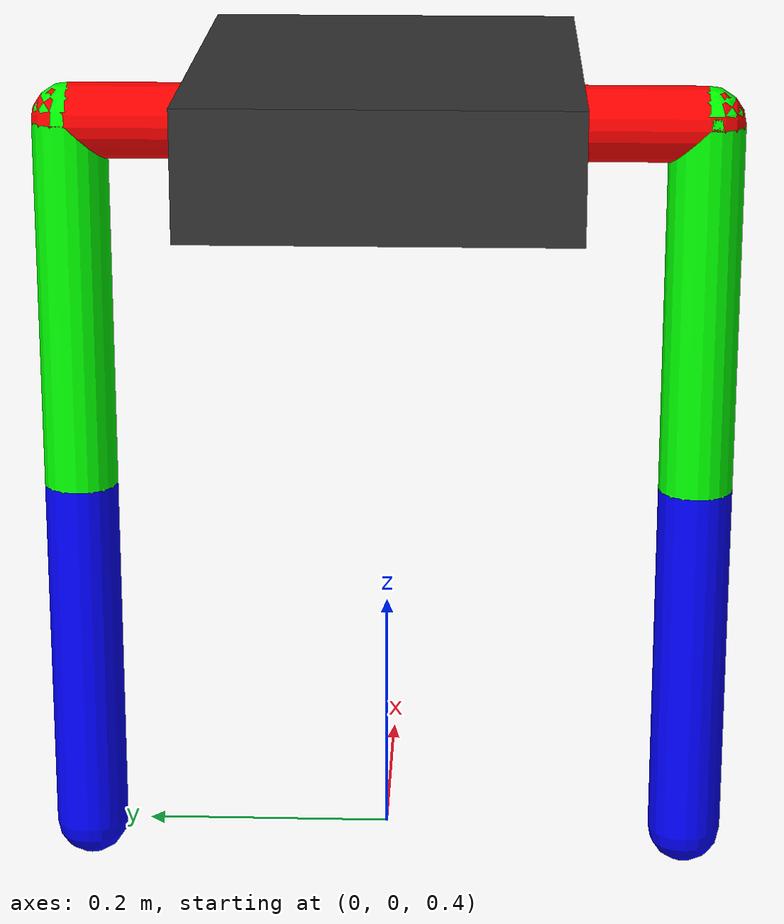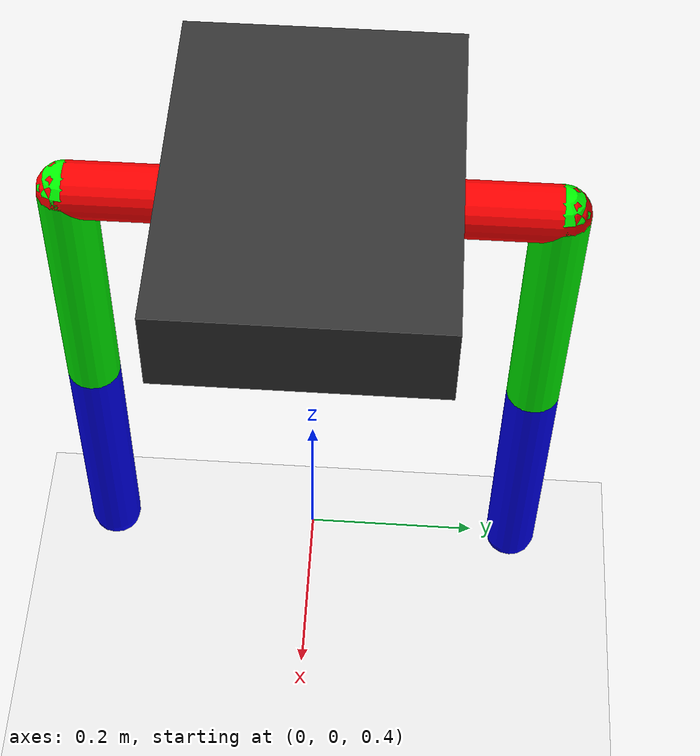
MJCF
<mujoco model="biped_triple_pendulum">
    <compiler angle="radian" coordinate="local" inertiafromgeom="true"/>
    <option gravity="0 0 -9.81" integrator="RK4" timestep="0.01"/>

    <worldbody>
        <light diffuse=".5 .5 .5" pos="0 0 3" dir="0 0 -1"/>
        <geom type="plane" size="2 2 0.1" rgba=".9 .9 .9 1"/>

        <body name="base_link" pos="0 0 1.0">
            <geom type="box" size="0.2 0.15 0.05" rgba="0.2 0.2 0.2 1"/>

            <body name="L_link1" pos="0 0.15 0">
                <joint name="L_joint1" type="hinge" axis="1 0 0" pos="0 0 0"/> <geom type="capsule" fromto="0 0 0 0 0.1 0" size="0.03" rgba="1 0 0 1"/>

                <body name="L_link2" pos="0 0.1 0">
                    <joint name="L_joint2" type="hinge" axis="0 1 0" pos="0 0 0"/> <geom type="capsule" fromto="0 0 0 0 0 -0.3" size="0.03" rgba="0 1 0 1"/>

                    <body name="L_link3" pos="0 0 -0.3">
                        <joint name="L_joint3" type="hinge" axis="0 1 0" pos="0 0 0"/> <geom type="capsule" fromto="0 0 0 0 0 -0.3" size="0.03" rgba="0 0 1 1"/>
                        <body name="L_foot" pos="0 0 -0.3">
                            <site name="L_tip" pos="0 0 0" size="0.02" rgba="1 1 0 1"/>
                        </body>
                    </body>
                </body>
            </body>

            <body name="R_link1" pos="0 -0.15 0">
                <joint name="R_joint1" type="hinge" axis="1 0 0" pos="0 0 0"/> <geom type="capsule" fromto="0 0 0 0 -0.1 0" size="0.03" rgba="1 0 0 1"/>

                <body name="R_link2" pos="0 -0.1 0">
                    <joint name="R_joint2" type="hinge" axis="0 1 0" pos="0 0 0"/> <geom type="capsule" fromto="0 0 0 0 0 -0.3" size="0.03" rgba="0 1 0 1"/>

                    <body name="R_link3" pos="0 0 -0.3">
                        <joint name="R_joint3" type="hinge" axis="0 1 0" pos="0 0 0"/> <geom type="capsule" fromto="0 0 0 0 0 -0.3" size="0.03" rgba="0 0 1 1"/>
                        <body name="R_foot" pos="0 0 -0.3">
                            <site name="R_tip" pos="0 0 0" size="0.02" rgba="1 1 0 1"/>
                        </body>
                    </body>
                </body>
            </body>
        </body>
    </worldbody>

    <actuator>
        <motor joint="L_joint1" ctrlrange="-10 10" gear="1"/>
        <motor joint="L_joint2" ctrlrange="-10 10" gear="1"/>
        <motor joint="L_joint3" ctrlrange="-10 10" gear="1"/>
        <motor joint="R_joint1" ctrlrange="-10 10" gear="1"/>
        <motor joint="R_joint2" ctrlrange="-10 10" gear="1"/>
        <motor joint="R_joint3" ctrlrange="-10 10" gear="1"/>
    </actuator>

</mujoco>
